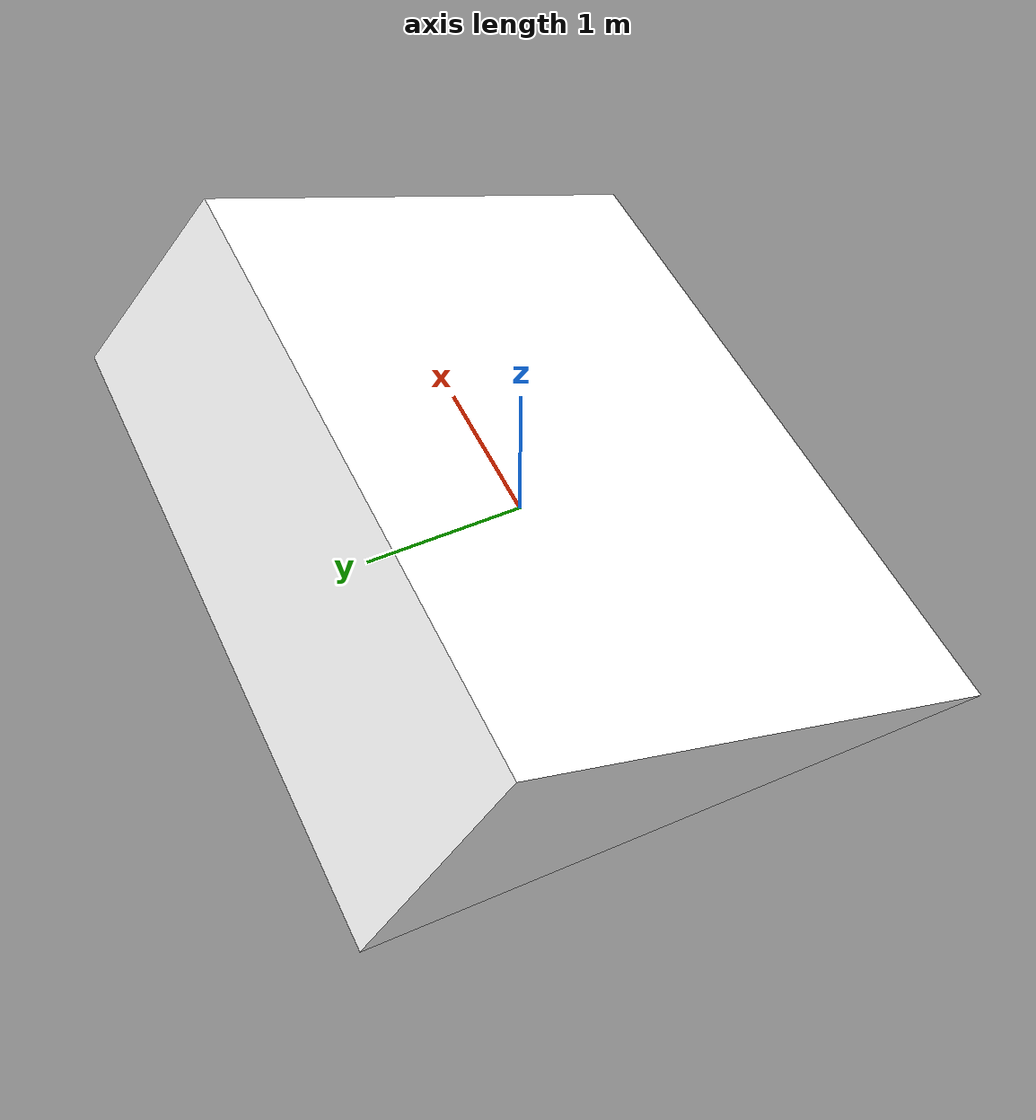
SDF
<?xml version="1.0"?>
<sdf version="1.4">
  <model name="stepping_block">
    <pose>0 0 0 0 0 0</pose>
    <static>true</static>
    <link name="link">
      <collision name="collision">
        <geometry>
          <mesh>
            <uri>model://legs/slope20.dae</uri>
	    <scale>0.01 0.01 0.01</scale>
          </mesh>
        </geometry>
      </collision>

      <visual name="visual">
        <geometry>
          <mesh>
            <uri>model://legs/slope20.dae</uri>
	    <scale>0.01 0.01 0.01</scale>
          </mesh>
        </geometry>
      </visual>
    </link>
  </model>
</sdf>
